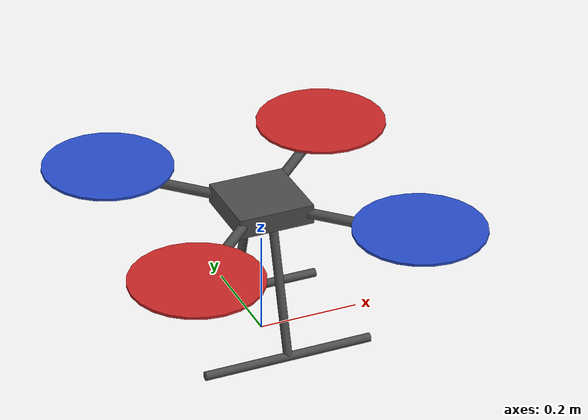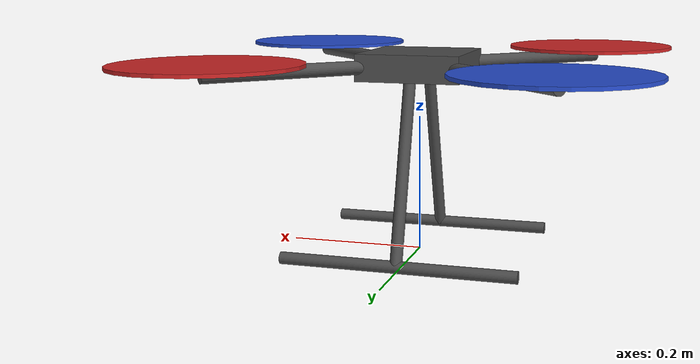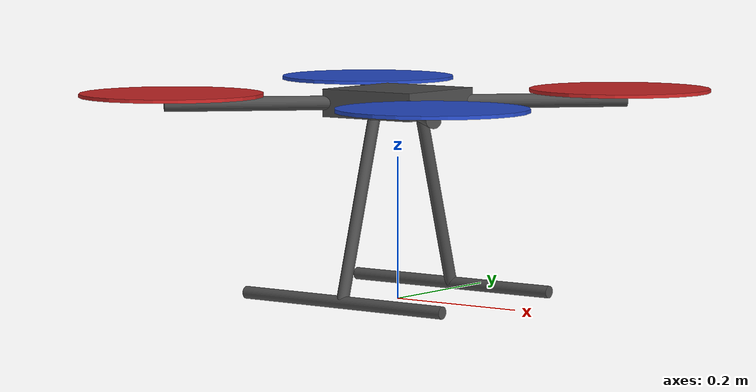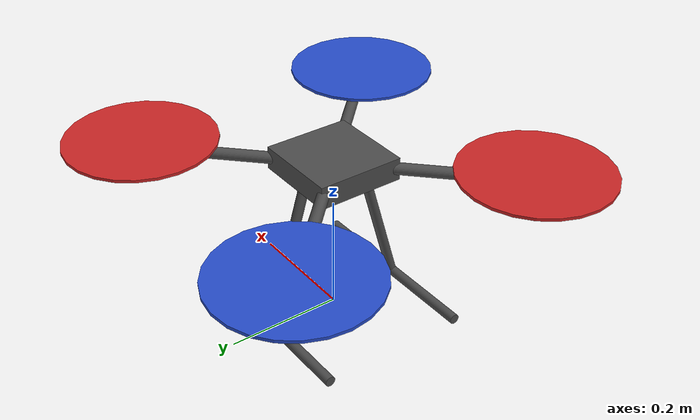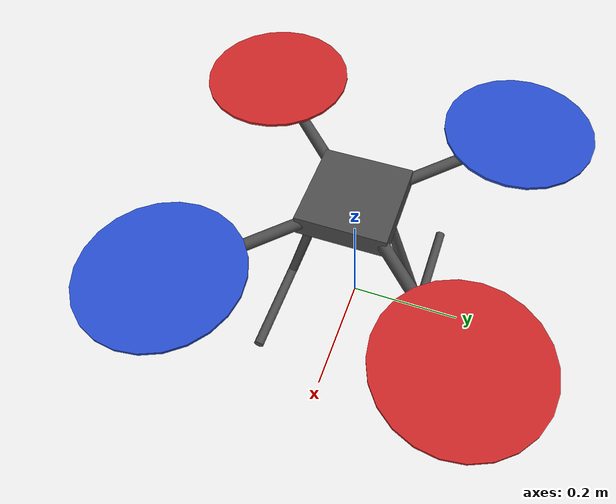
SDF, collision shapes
<?xml version='1.0'?>
<sdf version='1.6'>
  <model name='FJI-550'>
	 <!--set static to true to disable the physics in the simulation-->
	<static>false</static>
    <link name='base_link'>
      <pose frame=''>0 0 0.2765 0 -0 0</pose>
      <inertial>
        <pose frame=''>0 0 0 0 -0 0</pose>
        <mass>1.93</mass>
        <inertia>
          <ixx>0.025</ixx>
          <ixy>0</ixy>
          <ixz>0</ixz>
          <iyy>0.025</iyy>
          <iyz>0</iyz>
          <izz>0.043</izz>
        </inertia>
      </inertial>
      <collision name='base_link_inertia_collision'>
        <pose frame=''>0 0 0 0 -0 0</pose>
        <geometry>
          <box>
            <size>0.15 0.15 0.039</size>
          </box>
        </geometry>
        <surface>
          <contact>
            <ode>
              <min_depth>0.001</min_depth>
              <max_vel>0</max_vel>
            </ode>
          </contact>
          <friction>
            <ode/>
          </friction>
        </surface>
      </collision>
      <visual name='base_link_inertia_visual'>
        <pose frame=''>0 0 0 0 -0 0</pose>
        <geometry>
			<box>
              <size>0.15 0.15 0.039</size>
            </box>
        </geometry>
        <material>
          <script>
            <name>Gazebo/DarkGrey</name>
            <uri>file://media/materials/scripts/gazebo.material</uri>
          </script>
        </material>
      </visual>

	  <!--Modelling the left leg bracket of the Quadrotor-->
	  <!--Collision model for left leg, it is shaped as a cylinder-->
	  <collision name='base_link_left_leg_inertia_collision'>
    	<pose frame=''>0 -0.09 -0.14 -0.2837995718 0 0</pose>
        <geometry>
        	<cylinder>
            	<radius>0.00875</radius>
				<length>0.267720003</length>
			</cylinder>
        </geometry>
        <surface>
          <contact>
            <ode>
              <min_depth>0.001</min_depth>
              <max_vel>0</max_vel>
            </ode>
          </contact>
          <friction>
            <ode/>
          </friction>
        </surface>
      </collision>
      <visual name='base_link_left_leg_inertia_visual'>
        <pose frame=''>0 -0.09 -0.14 -0.2837995718 0 0</pose>
        <geometry>
			<cylinder>
				<radius>0.00875</radius>
				<length>0.267720003</length>
		  	</cylinder>
        </geometry>
        <material>
          <script>
            <name>Gazebo/DarkGrey</name>
            <uri>file://media/materials/scripts/gazebo.material</uri>
          </script>
        </material>
      </visual>
	  <!--Modelling the bottom part of the left leg-->
	  <collision name='base_link_left_leg_bottom_inertia_collision'>
    	<pose frame=''>0 -0.1275 -0.26775 1.570707 0 1.570707</pose>
        <geometry>
        	<cylinder>
            	<radius>0.00875</radius>
				<length>0.34</length>
			</cylinder>
        </geometry>
        <surface>
          <contact>
            <ode>
              <min_depth>0.001</min_depth>
              <max_vel>0</max_vel>
            </ode>
          </contact>
          <friction>
            <ode/>
          </friction>
        </surface>
      </collision>
      <visual name='base_link_left_leg_bottom_inertia_visual'>
        <pose frame=''>0 -0.1275 -0.26775 1.570707 0 1.570707</pose>
        <geometry>
			<cylinder>
				<radius>0.00875</radius>
				<length>0.34</length>
		  	</cylinder>
        </geometry>
        <material>
          <script>
            <name>Gazebo/DarkGrey</name>
            <uri>file://media/materials/scripts/gazebo.material</uri>
          </script>
        </material>
      </visual>

	  <!--Modelling the right leg bracket of the Quadrotor-->
	  <!--Collision model for right leg, it is shaped as a cylinder-->
	  <collision name='base_link_right_leg_inertia_collision'>
    	<pose frame=''>0 0.09 -0.14 0.2837995718 0 0</pose>
        <geometry>
        	<cylinder>
            	<radius>0.00875</radius>
				<length>0.267720003</length>
			</cylinder>
        </geometry>
        <surface>
          <contact>
            <ode>
              <min_depth>0.001</min_depth>
              <max_vel>0</max_vel>
            </ode>
          </contact>
          <friction>
            <ode/>
          </friction>
        </surface>
      </collision>
      <visual name='base_link_right_leg_inertia_visual'>
        <pose frame=''>0 0.09 -0.14 0.2837995718 0 0</pose>
        <geometry>
			<cylinder>
				<radius>0.00875</radius>
				<length>0.267720003</length>
		  	</cylinder>
        </geometry>
        <material>
          <script>
            <name>Gazebo/DarkGrey</name>
            <uri>file://media/materials/scripts/gazebo.material</uri>
          </script>
        </material>
      </visual>
	  <!--Modelling the bottom part of the right leg, shaped as a cylinder-->
	  <collision name='base_link_right_leg_bottom_inertia_collision'>
    	<pose frame=''>0 0.1275 -0.26775 1.570707 0 1.570707</pose>
        <geometry>
        	<cylinder>
            	<radius>0.00875</radius>
				<length>0.34</length>
			</cylinder>
        </geometry>
        <surface>
          <contact>
            <ode>
              <min_depth>0.001</min_depth>
              <max_vel>0</max_vel>
            </ode>
          </contact>
          <friction>
            <ode/>
          </friction>
        </surface>
      </collision>
      <visual name='base_link_right_leg_bottom_inertia_visual'>
        <pose frame=''>0 0.1275 -0.26775 1.570707 0 1.570707</pose>
        <geometry>
			<cylinder>
				<radius>0.00875</radius>
				<length>0.34</length>
		  	</cylinder>
        </geometry>
        <material>
          <script>
            <name>Gazebo/DarkGrey</name>
            <uri>file://media/materials/scripts/gazebo.material</uri>
          </script>
        </material>
      </visual>

	  <!--Frame for rotor_0, CCW-->
	  <collision name='base_link_rotor_0_frame_inertia_collision'>
    	<pose frame=''>0.149246212 -0.149246212 0 0 1.5707 -0.78535</pose>
        <geometry>
        	<cylinder>
            	<radius>0.01</radius>
				<length>0.23</length>
			</cylinder>
        </geometry>
        <surface>
          <contact>
            <ode>
              <min_depth>0.001</min_depth>
              <max_vel>0</max_vel>
            </ode>
          </contact>
          <friction>
            <ode/>
          </friction>
        </surface>
      </collision>
      <visual name='base_link_rotor_0_frame_inertia_visual'>
        <pose frame=''>0.149246212 -0.149246212 0 0 1.5707 -0.78535</pose>
        <geometry>
			<cylinder>
				<radius>0.01</radius>
				<length>0.23</length>
		  	</cylinder>
        </geometry>
        <material>
          <script>
            <name>Gazebo/DarkGrey</name>
            <uri>file://media/materials/scripts/gazebo.material</uri>
          </script>
        </material>
      </visual>

	  <!--Frame for rotor_1, CCW-->
	  <collision name='base_link_rotor_1_frame_inertia_collision'>
	    <pose frame=''>-0.149246212 0.149246212 0 0 -1.5707 -0.78535</pose>
	    <geometry>
	  	  <cylinder>
	  		  <radius>0.01</radius>
	  		  <length>0.23</length>
	  	  </cylinder>
	    </geometry>
	    <surface>
	  	<contact>
	  	  <ode>
	  		<min_depth>0.001</min_depth>
	  		<max_vel>0</max_vel>
	  	  </ode>
	  	</contact>
	  	<friction>
	  	  <ode/>
	  	</friction>
	    </surface>
	  </collision>
	  <visual name='base_link_rotor_1_frame_inertia_visual'>
	    <pose frame=''>-0.149246212 0.149246212 0 0 -1.5707 -0.78535</pose>
	    <geometry>
	  	  <cylinder>
	  		  <radius>0.01</radius>
	  		  <length>0.23</length>
	  	  </cylinder>
	    </geometry>
	    <material>
	  	<script>
	  	  <name>Gazebo/DarkGrey</name>
	  	  <uri>file://media/materials/scripts/gazebo.material</uri>
	  	</script>
	    </material>
	  </visual>

	  <!--Frame for rotor_2, CW-->
	  <collision name='base_link_rotor_2_frame_inertia_collision'>
    	<pose frame=''>0.149246212 0.149246212 0 0 1.5707 0.78535</pose>
        <geometry>
        	<cylinder>
            	<radius>0.01</radius>
				<length>0.23</length>
			</cylinder>
        </geometry>
        <surface>
          <contact>
            <ode>
              <min_depth>0.001</min_depth>
              <max_vel>0</max_vel>
            </ode>
          </contact>
          <friction>
            <ode/>
          </friction>
        </surface>
      </collision>
      <visual name='base_link_rotor_2_frame_inertia_visual'>
        <pose frame=''>0.149246212 0.149246212 0 0 1.5707 0.78535</pose>
        <geometry>
			<cylinder>
				<radius>0.01</radius>
				<length>0.23</length>
		  	</cylinder>
        </geometry>
        <material>
          <script>
            <name>Gazebo/DarkGrey</name>
            <uri>file://media/materials/scripts/gazebo.material</uri>
          </script>
        </material>
      </visual>

	  <!--Frame for rotor_3, CW-->
	  <collision name='base_link_rotor_3_frame_inertia_collision'>
    	<pose frame=''>-0.149246212 -0.149246212 0 0 -1.5707 0.78535</pose>
        <geometry>
        	<cylinder>
            	<radius>0.01</radius>
				<length>0.23</length>
			</cylinder>
        </geometry>
        <surface>
          <contact>
            <ode>
              <min_depth>0.001</min_depth>
              <max_vel>0</max_vel>
            </ode>
          </contact>
          <friction>
            <ode/>
          </friction>
        </surface>
      </collision>
      <visual name='base_link_rotor_3_frame_inertia_visual'>
        <pose frame=''>-0.149246212 -0.149246212 0 0 -1.5707 0.78535</pose>
        <geometry>
			<cylinder>
				<radius>0.01</radius>
				<length>0.23</length>
		  	</cylinder>
        </geometry>
        <material>
          <script>
            <name>Gazebo/DarkGrey</name>
            <uri>file://media/materials/scripts/gazebo.material</uri>
          </script>
        </material>
      </visual>
	  <gravity>1</gravity>
      <velocity_decay/>
    </link>
    <link name='/imu_link'>
      <pose frame=''>0 0 0.2765 0 -0 0</pose>
      <inertial>
        <pose frame=''>0 0 0 0 -0 0</pose>
        <mass>0.015</mass>
        <inertia>
          <ixx>1e-05</ixx>
          <ixy>0</ixy>
          <ixz>0</ixz>
          <iyy>1e-05</iyy>
          <iyz>0</iyz>
          <izz>1e-05</izz>
        </inertia>
      </inertial>
    </link>
    <joint name='/imu_joint' type='revolute'>
      <child>/imu_link</child>
      <parent>base_link</parent>
      <axis>
        <xyz>1 0 0</xyz>
        <limit>
          <lower>0</lower>
          <upper>0</upper>
          <effort>0</effort>
          <velocity>0</velocity>
        </limit>
        <dynamics>
          <spring_reference>0</spring_reference>
          <spring_stiffness>0</spring_stiffness>
        </dynamics>
        <use_parent_model_frame>1</use_parent_model_frame>
      </axis>
    </joint>
    <link name='rotor_0'>
      <pose frame=''>0.223492424 -0.223492424 0.29 0 0 -0.78535</pose>
      <inertial>
        <pose frame=''>0 0 0 0 -0 0</pose>
        <mass>0.015</mass>
        <inertia>
          <ixx>0.00026</ixx>
          <ixy>0</ixy>
          <ixz>0</ixz>
          <iyy>0.000273104</iyy>
          <iyz>0</iyz>
          <izz>0.000274004</izz>
        </inertia>
      </inertial>
      <collision name='rotor_0_collision'>
        <pose frame=''>0 0 0 0 -0 0</pose>
        <geometry>
          <cylinder>
            <length>0.005</length>
            <radius>0.128</radius>
          </cylinder>
        </geometry>
        <surface>
          <contact>
            <ode/>
          </contact>
          <friction>
            <ode/>
          </friction>
        </surface>
      </collision>
      <visual name='rotor_0_visual'>
        <pose frame=''>0 0 0 0 -0 0</pose>
        <geometry>
          <mesh>
            <scale>1 1 1</scale>
            <uri>model://rotors_description/meshes/iris_prop_ccw.dae</uri>
          </mesh>
        </geometry>
        <material>
          <script>
            <name>Gazebo/Blue</name>
            <uri>file://media/materials/scripts/gazebo.material</uri>
          </script>
        </material>
      </visual>
      <gravity>1</gravity>
      <velocity_decay/>
    </link>
    <joint name='rotor_0_joint' type='revolute'>
      <child>rotor_0</child>
      <parent>base_link</parent>
      <axis>
        <xyz>0 0 1</xyz>
        <limit>
          <lower>-1e+16</lower>
          <upper>1e+16</upper>
        </limit>
        <dynamics>
          <spring_reference>0</spring_reference>
          <spring_stiffness>0</spring_stiffness>
        </dynamics>
        <use_parent_model_frame>1</use_parent_model_frame>
      </axis>
    </joint>
    <link name='rotor_1'>
      <pose frame=''>-0.223492424 0.223492424 0.29 0 0 -0.78535</pose>
      <inertial>
        <pose frame=''>0 0 0 0 -0 0</pose>
        <mass>0.015</mass>
        <inertia>
          <ixx>0.00026</ixx>
          <ixy>0</ixy>
          <ixz>0</ixz>
          <iyy>0.000273104</iyy>
          <iyz>0</iyz>
          <izz>0.000274004</izz>
        </inertia>
      </inertial>
      <collision name='rotor_1_collision'>
        <pose frame=''>0 0 0 0 -0 0</pose>
        <geometry>
          <cylinder>
            <length>0.005</length>
            <radius>0.128</radius>
          </cylinder>
        </geometry>
        <surface>
          <contact>
            <ode/>
          </contact>
          <friction>
            <ode/>
          </friction>
        </surface>
      </collision>
      <visual name='rotor_1_visual'>
        <pose frame=''>0 0 0 0 -0 0</pose>
        <geometry>
          <mesh>
            <scale>1 1 1</scale>
            <uri>model://rotors_description/meshes/iris_prop_ccw.dae</uri>
          </mesh>
        </geometry>
        <material>
          <script>
            <name>Gazebo/Blue</name>
            <uri>file://media/materials/scripts/gazebo.material</uri>
          </script>
        </material>
      </visual>
      <gravity>1</gravity>
      <velocity_decay/>
    </link>
    <joint name='rotor_1_joint' type='revolute'>
      <child>rotor_1</child>
      <parent>base_link</parent>
      <axis>
        <xyz>0 0 1</xyz>
        <limit>
          <lower>-1e+16</lower>
          <upper>1e+16</upper>
        </limit>
        <dynamics>
          <spring_reference>0</spring_reference>
          <spring_stiffness>0</spring_stiffness>
        </dynamics>
        <use_parent_model_frame>1</use_parent_model_frame>
      </axis>
    </joint>
    <link name='rotor_2'>
      <pose frame=''>0.223492424 0.223492424 0.29 0 0 0.78535</pose>
      <inertial>
        <pose frame=''>0 0 0 0 -0 0</pose>
        <mass>0.015</mass>
        <inertia>
          <ixx>0.00026</ixx>
          <ixy>0</ixy>
          <ixz>0</ixz>
          <iyy>0.000273104</iyy>
          <iyz>0</iyz>
          <izz>0.000274004</izz>
        </inertia>
      </inertial>
      <collision name='rotor_2_collision'>
        <pose frame=''>0 0 0 0 -0 0</pose>
        <geometry>
          <cylinder>
            <length>0.005</length>
            <radius>0.128</radius>
          </cylinder>
        </geometry>
        <surface>
          <contact>
            <ode/>
          </contact>
          <friction>
            <ode/>
          </friction>
        </surface>
      </collision>
      <visual name='rotor_2_visual'>
        <pose frame=''>0 0 0 0 -0 0</pose>
        <geometry>
          <mesh>
            <scale>1 1 1</scale>
            <uri>model://rotors_description/meshes/iris_prop_cw.dae</uri>
          </mesh>
        </geometry>
        <material>
          <script>
            <name>Gazebo/Red</name>
            <uri>file://media/materials/scripts/gazebo.material</uri>
          </script>
        </material>
      </visual>
      <gravity>1</gravity>
      <velocity_decay/>
    </link>
    <joint name='rotor_2_joint' type='revolute'>
      <child>rotor_2</child>
      <parent>base_link</parent>
      <axis>
        <xyz>0 0 1</xyz>
        <limit>
          <lower>-1e+16</lower>
          <upper>1e+16</upper>
        </limit>
        <dynamics>
          <spring_reference>0</spring_reference>
          <spring_stiffness>0</spring_stiffness>
        </dynamics>
        <use_parent_model_frame>1</use_parent_model_frame>
      </axis>
    </joint>
    <link name='rotor_3'>
      <pose frame=''>-0.223492424 -0.223492424 0.29 0 0 0.78535</pose>
      <inertial>
        <pose frame=''>0 0 0 0 -0 0</pose>
        <mass>0.015</mass>
        <inertia>
          <ixx>0.00026</ixx>
          <ixy>0</ixy>
          <ixz>0</ixz>
          <iyy>0.000273104</iyy>
          <iyz>0</iyz>
          <izz>0.000274004</izz>
        </inertia>
      </inertial>
      <collision name='rotor_3_collision'>
        <pose frame=''>0 0 0 0 -0 0</pose>
        <geometry>
          <cylinder>
            <length>0.005</length>
            <radius>0.128</radius>
          </cylinder>
	  </geometry>
        <surface>
          <contact>
            <ode/>
          </contact>
          <friction>
            <ode/>
          </friction>
        </surface>
      </collision>
      <visual name='rotor_3_visual'>
        <pose frame=''>0 0 0 0 -0 0</pose>
        <geometry>
          <mesh>
            <scale>1 1 1</scale>
            <uri>model://rotors_description/meshes/iris_prop_cw.dae</uri>
          </mesh>
        </geometry>
        <material>
          <script>
            <name>Gazebo/Red</name>
            <uri>file://media/materials/scripts/gazebo.material</uri>
          </script>
        </material>
      </visual>
      <gravity>1</gravity>
      <velocity_decay/>
    </link>
    <joint name='rotor_3_joint' type='revolute'>
      <child>rotor_3</child>
      <parent>base_link</parent>
      <axis>
        <xyz>0 0 1</xyz>
        <limit>
          <lower>-1e+16</lower>
          <upper>1e+16</upper>
        </limit>
        <dynamics>
          <spring_reference>0</spring_reference>
          <spring_stiffness>0</spring_stiffness>
        </dynamics>
        <use_parent_model_frame>1</use_parent_model_frame>
      </axis>
    </joint>
    <plugin name='rosbag' filename='librotors_gazebo_multirotor_base_plugin.so'>
      <robotNamespace/>
      <linkName>base_link</linkName>
      <rotorVelocitySlowdownSim>10</rotorVelocitySlowdownSim>
    </plugin>
    <plugin name='front_right_motor_model' filename='librotors_gazebo_motor_model.so'>
      <robotNamespace/>
      <jointName>rotor_0_joint</jointName>
      <linkName>rotor_0</linkName>
      <turningDirection>ccw</turningDirection>
      <timeConstantUp>0.0125</timeConstantUp>
      <timeConstantDown>0.025</timeConstantDown>
      <maxRotVelocity>1100</maxRotVelocity>
      <motorConstant>8.54858e-06</motorConstant>
      <momentConstant>0.06</momentConstant>
      <commandSubTopic>/gazebo/command/motor_speed</commandSubTopic>
      <motorNumber>0</motorNumber>
      <rotorDragCoefficient>0.000806428</rotorDragCoefficient>
      <rollingMomentCoefficient>1e-06</rollingMomentCoefficient>
      <motorSpeedPubTopic>/motor_speed/0</motorSpeedPubTopic>
      <rotorVelocitySlowdownSim>10</rotorVelocitySlowdownSim>
    </plugin>
    <plugin name='back_left_motor_model' filename='librotors_gazebo_motor_model.so'>
      <robotNamespace/>
      <jointName>rotor_1_joint</jointName>
      <linkName>rotor_1</linkName>
      <turningDirection>ccw</turningDirection>
      <timeConstantUp>0.0125</timeConstantUp>
      <timeConstantDown>0.025</timeConstantDown>
      <maxRotVelocity>1100</maxRotVelocity>
      <motorConstant>8.54858e-06</motorConstant>
      <momentConstant>0.06</momentConstant>
      <commandSubTopic>/gazebo/command/motor_speed</commandSubTopic>
      <motorNumber>1</motorNumber>
      <rotorDragCoefficient>0.000806428</rotorDragCoefficient>
      <rollingMomentCoefficient>1e-06</rollingMomentCoefficient>
      <motorSpeedPubTopic>/motor_speed/1</motorSpeedPubTopic>
      <rotorVelocitySlowdownSim>10</rotorVelocitySlowdownSim>
    </plugin>
    <plugin name='front_left_motor_model' filename='librotors_gazebo_motor_model.so'>
      <robotNamespace/>
      <jointName>rotor_2_joint</jointName>
      <linkName>rotor_2</linkName>
      <turningDirection>cw</turningDirection>
      <timeConstantUp>0.0125</timeConstantUp>
      <timeConstantDown>0.025</timeConstantDown>
      <maxRotVelocity>1100</maxRotVelocity>
      <motorConstant>8.54858e-06</motorConstant>
      <momentConstant>0.06</momentConstant>
      <commandSubTopic>/gazebo/command/motor_speed</commandSubTopic>
      <motorNumber>2</motorNumber>
      <rotorDragCoefficient>0.000806428</rotorDragCoefficient>
      <rollingMomentCoefficient>1e-06</rollingMomentCoefficient>
      <motorSpeedPubTopic>/motor_speed/2</motorSpeedPubTopic>
      <rotorVelocitySlowdownSim>10</rotorVelocitySlowdownSim>
    </plugin>
    <plugin name='back_right_motor_model' filename='librotors_gazebo_motor_model.so'>
      <robotNamespace/>
      <jointName>rotor_3_joint</jointName>
      <linkName>rotor_3</linkName>
      <turningDirection>cw</turningDirection>
      <timeConstantUp>0.0125</timeConstantUp>
      <timeConstantDown>0.025</timeConstantDown>
      <maxRotVelocity>1100</maxRotVelocity>
      <motorConstant>8.54858e-06</motorConstant>
      <momentConstant>0.06</momentConstant>
      <commandSubTopic>/gazebo/command/motor_speed</commandSubTopic>
      <motorNumber>3</motorNumber>
      <rotorDragCoefficient>0.000806428</rotorDragCoefficient>
      <rollingMomentCoefficient>1e-06</rollingMomentCoefficient>
      <motorSpeedPubTopic>/motor_speed/3</motorSpeedPubTopic>
      <rotorVelocitySlowdownSim>10</rotorVelocitySlowdownSim>
    </plugin>
    <plugin name='gps_plugin' filename='libgazebo_gps_plugin.so'>
      <robotNamespace/>
      <gpsNoise>true</gpsNoise>
    </plugin>
    <plugin name='mavlink_interface' filename='librotors_gazebo_mavlink_interface.so'>
      <robotNamespace/>
      <imuSubTopic>/imu</imuSubTopic>
      <mavlink_addr>INADDR_ANY</mavlink_addr>
      <mavlink_udp_port>14560</mavlink_udp_port>
      <motorSpeedCommandPubTopic>/gazebo/command/motor_speed</motorSpeedCommandPubTopic>
      <control_channels>
        <channel name='rotor1'>
          <input_index>0</input_index>
          <input_offset>0</input_offset>
          <input_scaling>1000</input_scaling>
          <zero_position_disarmed>0</zero_position_disarmed>
          <zero_position_armed>100</zero_position_armed>
          <joint_control_type>velocity</joint_control_type>
        </channel>
        <channel name='rotor2'>
          <input_index>1</input_index>
          <input_offset>0</input_offset>
          <input_scaling>1000</input_scaling>
          <zero_position_disarmed>0</zero_position_disarmed>
          <zero_position_armed>100</zero_position_armed>
          <joint_control_type>velocity</joint_control_type>
        </channel>
        <channel name='rotor3'>
          <input_index>2</input_index>
          <input_offset>0</input_offset>
          <input_scaling>1000</input_scaling>
          <zero_position_disarmed>0</zero_position_disarmed>
          <zero_position_armed>100</zero_position_armed>
          <joint_control_type>velocity</joint_control_type>
        </channel>
        <channel name='rotor4'>
          <input_index>3</input_index>
          <input_offset>0</input_offset>
          <input_scaling>1000</input_scaling>
          <zero_position_disarmed>0</zero_position_disarmed>
          <zero_position_armed>100</zero_position_armed>
          <joint_control_type>velocity</joint_control_type>
        </channel>
        <channel name='rotor5'>
          <input_index>4</input_index>
          <input_offset>1</input_offset>
          <input_scaling>324.6</input_scaling>
          <zero_position_disarmed>0</zero_position_disarmed>
          <zero_position_armed>0</zero_position_armed>
          <joint_control_type>velocity</joint_control_type>
          <joint_control_pid>
            <p>0.1</p>
            <i>0</i>
            <d>0</d>
            <iMax>0.0</iMax>
            <iMin>0.0</iMin>
            <cmdMax>2</cmdMax>
            <cmdMin>-2</cmdMin>
          </joint_control_pid>
          <joint_name>zephyr_delta_wing::propeller_joint</joint_name>
        </channel>
        <channel name='rotor6'>
          <input_index>5</input_index>
          <input_offset>0</input_offset>
          <input_scaling>0.524</input_scaling>
          <zero_position_disarmed>0</zero_position_disarmed>
          <zero_position_armed>0</zero_position_armed>
          <joint_control_type>position</joint_control_type>
          <joint_name>zephyr_delta_wing::flap_left_joint</joint_name>
          <joint_control_pid>
            <p>10.0</p>
            <i>0</i>
            <d>0</d>
            <iMax>0</iMax>
            <iMin>0</iMin>
            <cmdMax>20</cmdMax>
            <cmdMin>-20</cmdMin>
          </joint_control_pid>
        </channel>
        <channel name='rotor7'>
          <input_index>6</input_index>
          <input_offset>0</input_offset>
          <input_scaling>0.524</input_scaling>
          <zero_position_disarmed>0</zero_position_disarmed>
          <zero_position_armed>0</zero_position_armed>
          <joint_control_type>position</joint_control_type>
          <joint_name>zephyr_delta_wing::flap_right_joint</joint_name>
          <joint_control_pid>
            <p>10.0</p>
            <i>0</i>
            <d>0</d>
            <iMax>0</iMax>
            <iMin>0</iMin>
            <cmdMax>20</cmdMax>
            <cmdMin>-20</cmdMin>
          </joint_control_pid>
        </channel>
        <channel name='rotor8'>
          <input_index>7</input_index>
          <input_offset>0</input_offset>
          <input_scaling>0.524</input_scaling>
          <zero_position_disarmed>0</zero_position_disarmed>
          <zero_position_armed>0</zero_position_armed>
          <joint_control_type>position</joint_control_type>
        </channel>
      </control_channels>
    </plugin>
    <static>0</static>
    <plugin name='rotors_gazebo_imu_plugin' filename='librotors_gazebo_imu_plugin.so'>
      <robotNamespace/>
      <linkName>/imu_link</linkName>
      <imuTopic>/imu</imuTopic>
      <gyroscopeNoiseDensity>0.0003394</gyroscopeNoiseDensity>
      <gyroscopeRandomWalk>3.8785e-05</gyroscopeRandomWalk>
      <gyroscopeBiasCorrelationTime>1000.0</gyroscopeBiasCorrelationTime>
      <gyroscopeTurnOnBiasSigma>0.0087</gyroscopeTurnOnBiasSigma>
      <accelerometerNoiseDensity>0.004</accelerometerNoiseDensity>
      <accelerometerRandomWalk>0.006</accelerometerRandomWalk>
      <accelerometerBiasCorrelationTime>300.0</accelerometerBiasCorrelationTime>
      <accelerometerTurnOnBiasSigma>0.196</accelerometerTurnOnBiasSigma>
    </plugin>
  </model>
</sdf>
